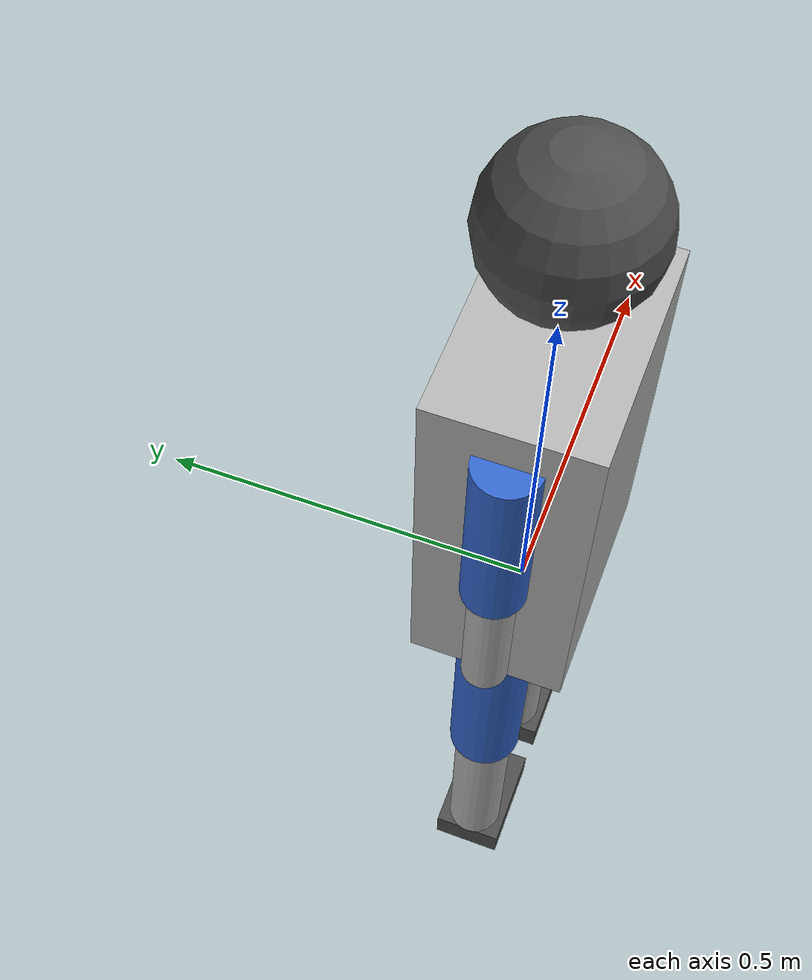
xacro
<?xml version="1.0"?>
<robot xmlns:xacro="http://www.ros.org/wiki/xacro" name="humanoid">

  <!-- ==================== Properties ==================== -->

  <!-- Torso dimensions -->
  <xacro:property name="torso_width" value="0.3"/>
  <xacro:property name="torso_depth" value="0.2"/>
  <xacro:property name="torso_height" value="0.5"/>
  <xacro:property name="torso_mass" value="10.0"/>

  <!-- Head dimensions -->
  <xacro:property name="head_radius" value="0.1"/>
  <xacro:property name="head_mass" value="2.0"/>

  <!-- Arm dimensions -->
  <xacro:property name="upper_arm_radius" value="0.04"/>
  <xacro:property name="upper_arm_length" value="0.25"/>
  <xacro:property name="upper_arm_mass" value="2.0"/>

  <xacro:property name="forearm_radius" value="0.03"/>
  <xacro:property name="forearm_length" value="0.2"/>
  <xacro:property name="forearm_mass" value="1.5"/>

  <!-- Leg dimensions -->
  <xacro:property name="upper_leg_radius" value="0.05"/>
  <xacro:property name="upper_leg_length" value="0.3"/>
  <xacro:property name="upper_leg_mass" value="3.0"/>

  <xacro:property name="lower_leg_radius" value="0.04"/>
  <xacro:property name="lower_leg_length" value="0.3"/>
  <xacro:property name="lower_leg_mass" value="2.0"/>

  <xacro:property name="foot_width" value="0.1"/>
  <xacro:property name="foot_length" value="0.15"/>
  <xacro:property name="foot_height" value="0.05"/>
  <xacro:property name="foot_mass" value="0.5"/>

  <!-- ==================== Materials ==================== -->

  <material name="silver">
    <color rgba="0.7 0.7 0.7 1.0"/>
  </material>

  <material name="dark_grey">
    <color rgba="0.3 0.3 0.3 1.0"/>
  </material>

  <material name="blue">
    <color rgba="0.2 0.4 0.8 1.0"/>
  </material>

  <!-- ==================== Inertia Macros ==================== -->

  <xacro:macro name="box_inertia" params="mass width depth height">
    <inertial>
      <mass value="${mass}"/>
      <inertia
        ixx="${mass*(depth*depth + height*height)/12}"
        ixy="0" ixz="0"
        iyy="${mass*(width*width + height*height)/12}"
        iyz="0"
        izz="${mass*(width*width + depth*depth)/12}"/>
    </inertial>
  </xacro:macro>

  <xacro:macro name="cylinder_inertia" params="mass radius length">
    <inertial>
      <mass value="${mass}"/>
      <inertia
        ixx="${mass*(3*radius*radius + length*length)/12}"
        ixy="0" ixz="0"
        iyy="${mass*(3*radius*radius + length*length)/12}"
        iyz="0"
        izz="${mass*radius*radius/2}"/>
    </inertial>
  </xacro:macro>

  <xacro:macro name="sphere_inertia" params="mass radius">
    <inertial>
      <mass value="${mass}"/>
      <inertia
        ixx="${2*mass*radius*radius/5}"
        ixy="0" ixz="0"
        iyy="${2*mass*radius*radius/5}"
        iyz="0"
        izz="${2*mass*radius*radius/5}"/>
    </inertial>
  </xacro:macro>

  <!-- ==================== Base Link (Torso) ==================== -->

  <link name="base_link">
    <visual>
      <origin xyz="0 0 ${torso_height/2}" rpy="0 0 0"/>
      <geometry>
        <box size="${torso_width} ${torso_depth} ${torso_height}"/>
      </geometry>
      <material name="silver"/>
    </visual>
    <collision>
      <origin xyz="0 0 ${torso_height/2}" rpy="0 0 0"/>
      <geometry>
        <box size="${torso_width} ${torso_depth} ${torso_height}"/>
      </geometry>
    </collision>
    <xacro:box_inertia mass="${torso_mass}"
                       width="${torso_width}"
                       depth="${torso_depth}"
                       height="${torso_height}"/>
  </link>

  <!-- ==================== Head ==================== -->

  <link name="head">
    <visual>
      <origin xyz="0 0 ${head_radius}" rpy="0 0 0"/>
      <geometry>
        <sphere radius="${head_radius}"/>
      </geometry>
      <material name="dark_grey"/>
    </visual>
    <collision>
      <origin xyz="0 0 ${head_radius}" rpy="0 0 0"/>
      <geometry>
        <sphere radius="${head_radius}"/>
      </geometry>
    </collision>
    <xacro:sphere_inertia mass="${head_mass}" radius="${head_radius}"/>
  </link>

  <joint name="head_pan" type="revolute">
    <parent link="base_link"/>
    <child link="head"/>
    <origin xyz="0 0 ${torso_height + 0.05}" rpy="0 0 0"/>
    <axis xyz="0 0 1"/>
    <limit lower="-1.57" upper="1.57" effort="10" velocity="2"/>
    <dynamics damping="0.5" friction="0.1"/>
  </joint>

  <!-- ==================== Arm Macro ==================== -->

  <xacro:macro name="arm" params="prefix reflect">
    <!-- Upper Arm -->
    <link name="${prefix}_upper_arm">
      <visual>
        <origin xyz="0 0 ${-upper_arm_length/2}" rpy="0 0 0"/>
        <geometry>
          <cylinder radius="${upper_arm_radius}" length="${upper_arm_length}"/>
        </geometry>
        <material name="blue"/>
      </visual>
      <collision>
        <origin xyz="0 0 ${-upper_arm_length/2}" rpy="0 0 0"/>
        <geometry>
          <cylinder radius="${upper_arm_radius}" length="${upper_arm_length}"/>
        </geometry>
      </collision>
      <xacro:cylinder_inertia mass="${upper_arm_mass}"
                              radius="${upper_arm_radius}"
                              length="${upper_arm_length}"/>
    </link>

    <joint name="${prefix}_shoulder_pitch" type="revolute">
      <parent link="base_link"/>
      <child link="${prefix}_upper_arm"/>
      <origin xyz="${reflect * torso_width/2} 0 ${torso_height - 0.05}" rpy="0 0 0"/>
      <axis xyz="0 1 0"/>
      <limit lower="-3.14" upper="1.57" effort="50" velocity="2"/>
      <dynamics damping="0.5" friction="0.1"/>
    </joint>

    <!-- Forearm -->
    <link name="${prefix}_forearm">
      <visual>
        <origin xyz="0 0 ${-forearm_length/2}" rpy="0 0 0"/>
        <geometry>
          <cylinder radius="${forearm_radius}" length="${forearm_length}"/>
        </geometry>
        <material name="silver"/>
      </visual>
      <collision>
        <origin xyz="0 0 ${-forearm_length/2}" rpy="0 0 0"/>
        <geometry>
          <cylinder radius="${forearm_radius}" length="${forearm_length}"/>
        </geometry>
      </collision>
      <xacro:cylinder_inertia mass="${forearm_mass}"
                              radius="${forearm_radius}"
                              length="${forearm_length}"/>
    </link>

    <joint name="${prefix}_elbow" type="revolute">
      <parent link="${prefix}_upper_arm"/>
      <child link="${prefix}_forearm"/>
      <origin xyz="0 0 ${-upper_arm_length}" rpy="0 0 0"/>
      <axis xyz="0 1 0"/>
      <limit lower="0" upper="2.5" effort="30" velocity="2"/>
      <dynamics damping="0.3" friction="0.1"/>
    </joint>
  </xacro:macro>

  <!-- ==================== Leg Macro ==================== -->

  <xacro:macro name="leg" params="prefix reflect">
    <!-- Upper Leg -->
    <link name="${prefix}_upper_leg">
      <visual>
        <origin xyz="0 0 ${-upper_leg_length/2}" rpy="0 0 0"/>
        <geometry>
          <cylinder radius="${upper_leg_radius}" length="${upper_leg_length}"/>
        </geometry>
        <material name="blue"/>
      </visual>
      <collision>
        <origin xyz="0 0 ${-upper_leg_length/2}" rpy="0 0 0"/>
        <geometry>
          <cylinder radius="${upper_leg_radius}" length="${upper_leg_length}"/>
        </geometry>
      </collision>
      <xacro:cylinder_inertia mass="${upper_leg_mass}"
                              radius="${upper_leg_radius}"
                              length="${upper_leg_length}"/>
    </link>

    <joint name="${prefix}_hip_pitch" type="revolute">
      <parent link="base_link"/>
      <child link="${prefix}_upper_leg"/>
      <origin xyz="${reflect * 0.1} 0 0" rpy="0 0 0"/>
      <axis xyz="0 1 0"/>
      <limit lower="-1.57" upper="1.57" effort="100" velocity="2"/>
      <dynamics damping="0.5" friction="0.1"/>
    </joint>

    <!-- Lower Leg -->
    <link name="${prefix}_lower_leg">
      <visual>
        <origin xyz="0 0 ${-lower_leg_length/2}" rpy="0 0 0"/>
        <geometry>
          <cylinder radius="${lower_leg_radius}" length="${lower_leg_length}"/>
        </geometry>
        <material name="silver"/>
      </visual>
      <collision>
        <origin xyz="0 0 ${-lower_leg_length/2}" rpy="0 0 0"/>
        <geometry>
          <cylinder radius="${lower_leg_radius}" length="${lower_leg_length}"/>
        </geometry>
      </collision>
      <xacro:cylinder_inertia mass="${lower_leg_mass}"
                              radius="${lower_leg_radius}"
                              length="${lower_leg_length}"/>
    </link>

    <joint name="${prefix}_knee" type="revolute">
      <parent link="${prefix}_upper_leg"/>
      <child link="${prefix}_lower_leg"/>
      <origin xyz="0 0 ${-upper_leg_length}" rpy="0 0 0"/>
      <axis xyz="0 1 0"/>
      <limit lower="0" upper="2.5" effort="80" velocity="2"/>
      <dynamics damping="0.3" friction="0.1"/>
    </joint>

    <!-- Foot -->
    <link name="${prefix}_foot">
      <visual>
        <origin xyz="${foot_length/4} 0 ${-foot_height/2}" rpy="0 0 0"/>
        <geometry>
          <box size="${foot_length} ${foot_width} ${foot_height}"/>
        </geometry>
        <material name="dark_grey"/>
      </visual>
      <collision>
        <origin xyz="${foot_length/4} 0 ${-foot_height/2}" rpy="0 0 0"/>
        <geometry>
          <box size="${foot_length} ${foot_width} ${foot_height}"/>
        </geometry>
      </collision>
      <xacro:box_inertia mass="${foot_mass}"
                         width="${foot_width}"
                         depth="${foot_length}"
                         height="${foot_height}"/>
    </link>

    <joint name="${prefix}_ankle" type="revolute">
      <parent link="${prefix}_lower_leg"/>
      <child link="${prefix}_foot"/>
      <origin xyz="0 0 ${-lower_leg_length}" rpy="0 0 0"/>
      <axis xyz="0 1 0"/>
      <limit lower="-0.8" upper="0.8" effort="50" velocity="2"/>
      <dynamics damping="0.2" friction="0.1"/>
    </joint>
  </xacro:macro>

  <!-- ==================== Instantiate Arms and Legs ==================== -->

  <xacro:arm prefix="left" reflect="1"/>
  <xacro:arm prefix="right" reflect="-1"/>

  <xacro:leg prefix="left" reflect="1"/>
  <xacro:leg prefix="right" reflect="-1"/>

</robot>
